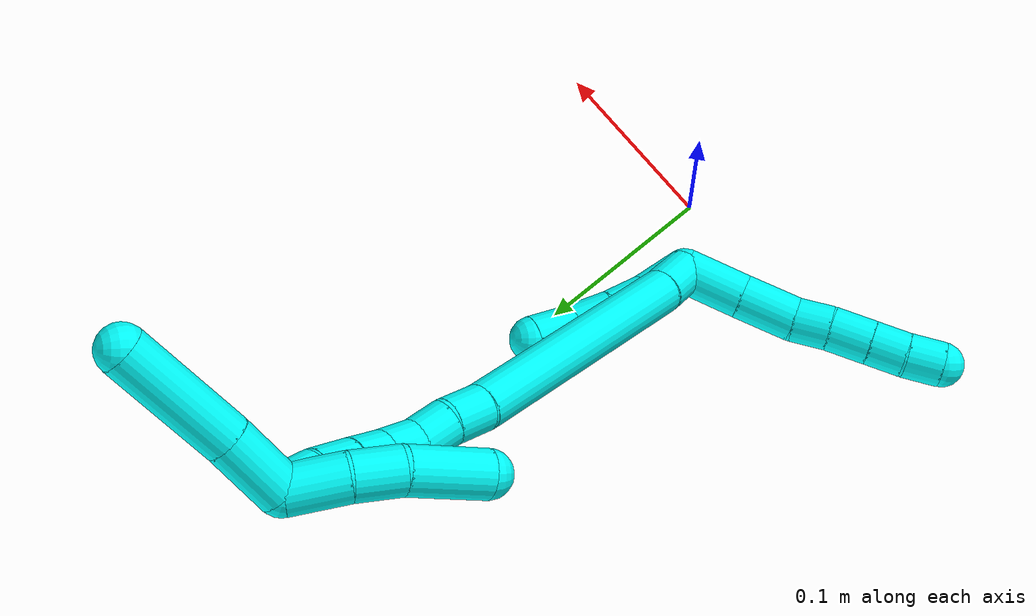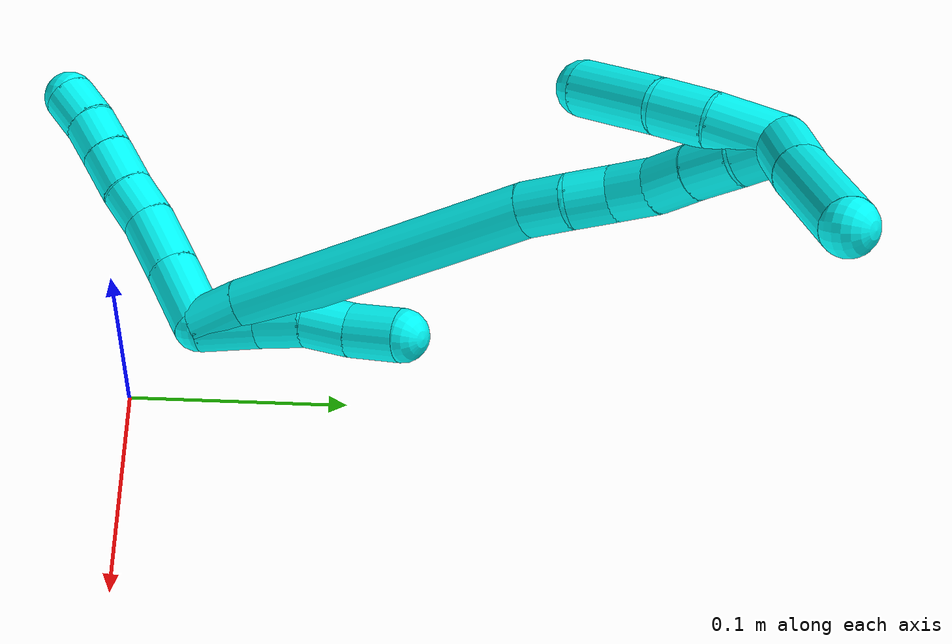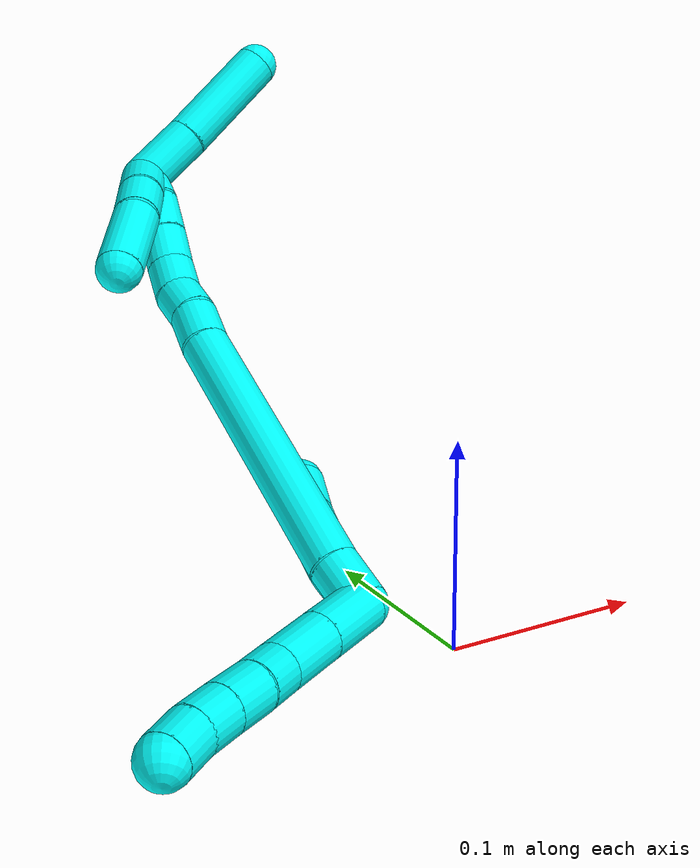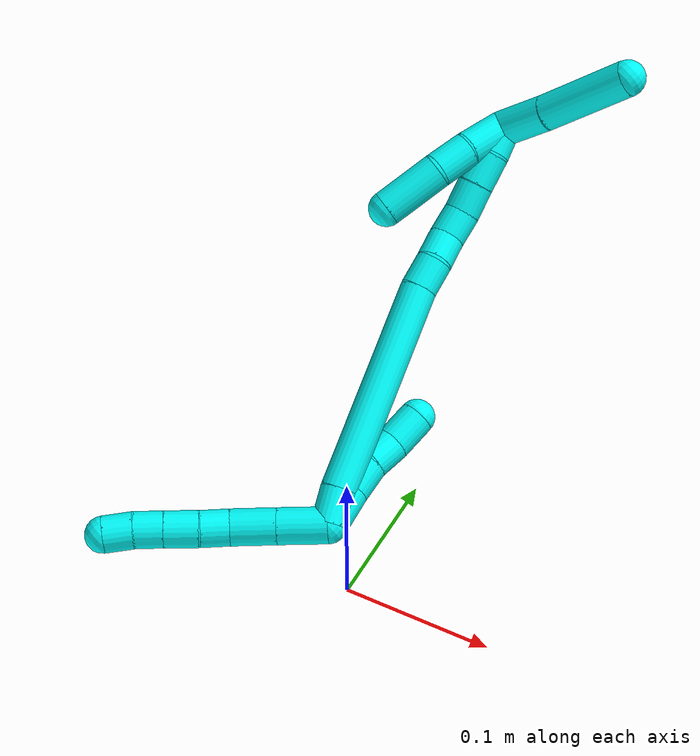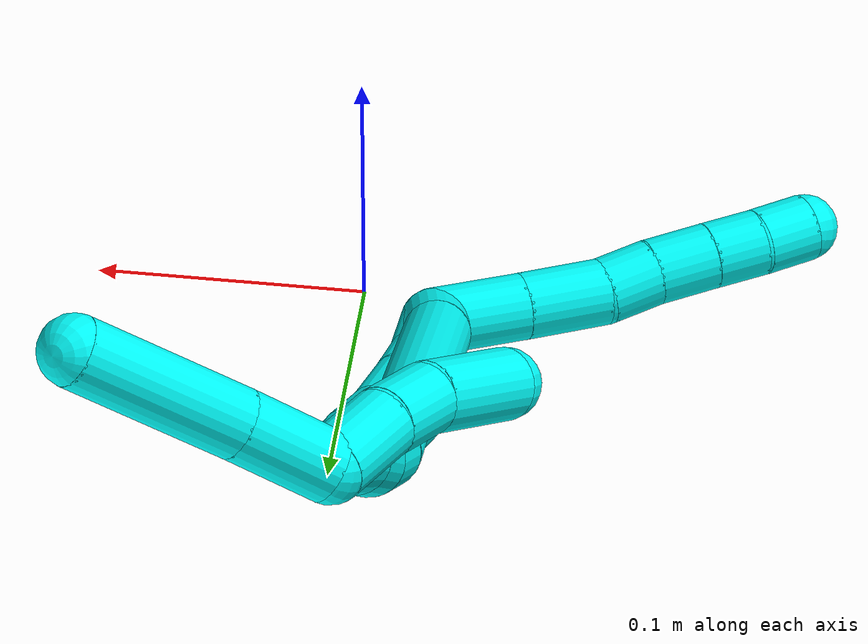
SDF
<sdf version="1.7">
 <world name="default">
  <model name="3">
   <static>0</static>
   <link name="3">
    <collision name="collision-cylinder-e_1_2_8">
     <pose>-0.00994 -0.00509 -0.012977 2.76782 -0.619461 -2.07426</pose>
     <geometry><cylinder><radius>0.0125</radius><length>0.034241</length></cylinder></geometry>
     <surface>
      <friction><ode><mu>1.16</mu><mu2>1.16</mu2><slip1>0</slip1><slip2>0</slip2></ode></friction>
      <contact><ode><kp>1e+06</kp><kd>1</kd><max_vel>0</max_vel><min_depth>0.001</min_depth></ode></contact>
     </surface>
    </collision>
    <visual name="visual-cylinder-e_1_2_8">
     <pose>-0.00994 -0.00509 -0.012977 2.76782 -0.619461 -2.07426</pose>
     <geometry><cylinder><radius>0.0125</radius><length>0.034241</length></cylinder></geometry>
     <material><ambient>0.003922 1 0.996078 1</ambient></material>
    </visual>
    <collision name="collision-cylinder-e_2_8_9">
     <pose>-0.02892 -0.015021 -0.03804 2.76055 -0.606887 -2.03746</pose>
     <geometry><cylinder><radius>0.0125</radius><length>0.031699</length></cylinder></geometry>
     <surface>
      <friction><ode><mu>1.16</mu><mu2>1.16</mu2><slip1>0</slip1><slip2>0</slip2></ode></friction>
      <contact><ode><kp>1e+06</kp><kd>1</kd><max_vel>0</max_vel><min_depth>0.001</min_depth></ode></contact>
     </surface>
    </collision>
    <visual name="visual-cylinder-e_2_8_9">
     <pose>-0.02892 -0.015021 -0.03804 2.76055 -0.606887 -2.03746</pose>
     <geometry><cylinder><radius>0.0125</radius><length>0.031699</length></cylinder></geometry>
     <material><ambient>0.003922 1 0.996078 1</ambient></material>
    </visual>
    <collision name="collision-cylinder-e_3_9_10">
     <pose>-0.042594 -0.024438 -0.05798 2.61415 -0.471569 -1.45429</pose>
     <geometry><cylinder><radius>0.0125</radius><length>0.020407</length></cylinder></geometry>
     <surface>
      <friction><ode><mu>1.16</mu><mu2>1.16</mu2><slip1>0</slip1><slip2>0</slip2></ode></friction>
      <contact><ode><kp>1e+06</kp><kd>1</kd><max_vel>0</max_vel><min_depth>0.001</min_depth></ode></contact>
     </surface>
    </collision>
    <visual name="visual-cylinder-e_3_9_10">
     <pose>-0.042594 -0.024438 -0.05798 2.61415 -0.471569 -1.45429</pose>
     <geometry><cylinder><radius>0.0125</radius><length>0.020407</length></cylinder></geometry>
     <material><ambient>0.003922 1 0.996078 1</ambient></material>
    </visual>
    <collision name="collision-cylinder-e_4_10_11">
     <pose>-0.05343 -0.033599 -0.074568 2.65813 -0.561141 -1.72614</pose>
     <geometry><cylinder><radius>0.0125</radius><length>0.023302</length></cylinder></geometry>
     <surface>
      <friction><ode><mu>1.16</mu><mu2>1.16</mu2><slip1>0</slip1><slip2>0</slip2></ode></friction>
      <contact><ode><kp>1e+06</kp><kd>1</kd><max_vel>0</max_vel><min_depth>0.001</min_depth></ode></contact>
     </surface>
    </collision>
    <visual name="visual-cylinder-e_4_10_11">
     <pose>-0.05343 -0.033599 -0.074568 2.65813 -0.561141 -1.72614</pose>
     <geometry><cylinder><radius>0.0125</radius><length>0.023302</length></cylinder></geometry>
     <material><ambient>0.003922 1 0.996078 1</ambient></material>
    </visual>
    <collision name="collision-cylinder-e_5_11_12">
     <pose>-0.064893 -0.041959 -0.090929 2.68198 -0.553871 -1.76434</pose>
     <geometry><cylinder><radius>0.0125</radius><length>0.020012</length></cylinder></geometry>
     <surface>
      <friction><ode><mu>1.16</mu><mu2>1.16</mu2><slip1>0</slip1><slip2>0</slip2></ode></friction>
      <contact><ode><kp>1e+06</kp><kd>1</kd><max_vel>0</max_vel><min_depth>0.001</min_depth></ode></contact>
     </surface>
    </collision>
    <visual name="visual-cylinder-e_5_11_12">
     <pose>-0.064893 -0.041959 -0.090929 2.68198 -0.553871 -1.76434</pose>
     <geometry><cylinder><radius>0.0125</radius><length>0.020012</length></cylinder></geometry>
     <material><ambient>0.003922 1 0.996078 1</ambient></material>
    </visual>
    <collision name="collision-cylinder-e_6_12_6">
     <pose>-0.074538 -0.049318 -0.107004 2.74041 -0.445533 -1.67864</pose>
     <geometry><cylinder><radius>0.0125</radius><length>0.020338</length></cylinder></geometry>
     <surface>
      <friction><ode><mu>1.16</mu><mu2>1.16</mu2><slip1>0</slip1><slip2>0</slip2></ode></friction>
      <contact><ode><kp>1e+06</kp><kd>1</kd><max_vel>0</max_vel><min_depth>0.001</min_depth></ode></contact>
     </surface>
    </collision>
    <visual name="visual-cylinder-e_6_12_6">
     <pose>-0.074538 -0.049318 -0.107004 2.74041 -0.445533 -1.67864</pose>
     <geometry><cylinder><radius>0.0125</radius><length>0.020338</length></cylinder></geometry>
     <material><ambient>0.003922 1 0.996078 1</ambient></material>
    </visual>
    <collision name="collision-cylinder-e_1_2_13">
     <pose>-0.006392 0.002992 0.012752 -0.230471 -0.453968 0.053455</pose>
     <geometry><cylinder><radius>0.0125</radius><length>0.029149</length></cylinder></geometry>
     <surface>
      <friction><ode><mu>1.16</mu><mu2>1.16</mu2><slip1>0</slip1><slip2>0</slip2></ode></friction>
      <contact><ode><kp>1e+06</kp><kd>1</kd><max_vel>0</max_vel><min_depth>0.001</min_depth></ode></contact>
     </surface>
    </collision>
    <visual name="visual-cylinder-e_1_2_13">
     <pose>-0.006392 0.002992 0.012752 -0.230471 -0.453968 0.053455</pose>
     <geometry><cylinder><radius>0.0125</radius><length>0.029149</length></cylinder></geometry>
     <material><ambient>0.003922 1 0.996078 1</ambient></material>
    </visual>
    <collision name="collision-cylinder-e_2_13_14">
     <pose>-0.016734 0.007509 0.03632 -0.140066 -0.347076 0.024593</pose>
     <geometry><cylinder><radius>0.0125</radius><length>0.02323</length></cylinder></geometry>
     <surface>
      <friction><ode><mu>1.16</mu><mu2>1.16</mu2><slip1>0</slip1><slip2>0</slip2></ode></friction>
      <contact><ode><kp>1e+06</kp><kd>1</kd><max_vel>0</max_vel><min_depth>0.001</min_depth></ode></contact>
     </surface>
    </collision>
    <visual name="visual-cylinder-e_2_13_14">
     <pose>-0.016734 0.007509 0.03632 -0.140066 -0.347076 0.024593</pose>
     <geometry><cylinder><radius>0.0125</radius><length>0.02323</length></cylinder></geometry>
     <material><ambient>0.003922 1 0.996078 1</ambient></material>
    </visual>
    <collision name="collision-cylinder-e_3_14_15">
     <pose>-0.023004 0.012852 0.057256 -0.360751 -0.211239 0.03866</pose>
     <geometry><cylinder><radius>0.0125</radius><length>0.022127</length></cylinder></geometry>
     <surface>
      <friction><ode><mu>1.16</mu><mu2>1.16</mu2><slip1>0</slip1><slip2>0</slip2></ode></friction>
      <contact><ode><kp>1e+06</kp><kd>1</kd><max_vel>0</max_vel><min_depth>0.001</min_depth></ode></contact>
     </surface>
    </collision>
    <visual name="visual-cylinder-e_3_14_15">
     <pose>-0.023004 0.012852 0.057256 -0.360751 -0.211239 0.03866</pose>
     <geometry><cylinder><radius>0.0125</radius><length>0.022127</length></cylinder></geometry>
     <material><ambient>0.003922 1 0.996078 1</ambient></material>
    </visual>
    <collision name="collision-cylinder-e_4_15_5">
     <pose>-0.027803 0.018359 0.079767 -0.13544 -0.195716 0.013317</pose>
     <geometry><cylinder><radius>0.0125</radius><length>0.025494</length></cylinder></geometry>
     <surface>
      <friction><ode><mu>1.16</mu><mu2>1.16</mu2><slip1>0</slip1><slip2>0</slip2></ode></friction>
      <contact><ode><kp>1e+06</kp><kd>1</kd><max_vel>0</max_vel><min_depth>0.001</min_depth></ode></contact>
     </surface>
    </collision>
    <visual name="visual-cylinder-e_4_15_5">
     <pose>-0.027803 0.018359 0.079767 -0.13544 -0.195716 0.013317</pose>
     <geometry><cylinder><radius>0.0125</radius><length>0.025494</length></cylinder></geometry>
     <material><ambient>0.003922 1 0.996078 1</ambient></material>
    </visual>
    <collision name="collision-cylinder-e_1_2_16">
     <pose>-0.006645 -0.001783 0.010176 0.173418 -0.571559 -0.051071</pose>
     <geometry><cylinder><radius>0.0125</radius><length>0.024567</length></cylinder></geometry>
     <surface>
      <friction><ode><mu>1.16</mu><mu2>1.16</mu2><slip1>0</slip1><slip2>0</slip2></ode></friction>
      <contact><ode><kp>1e+06</kp><kd>1</kd><max_vel>0</max_vel><min_depth>0.001</min_depth></ode></contact>
     </surface>
    </collision>
    <visual name="visual-cylinder-e_1_2_16">
     <pose>-0.006645 -0.001783 0.010176 0.173418 -0.571559 -0.051071</pose>
     <geometry><cylinder><radius>0.0125</radius><length>0.024567</length></cylinder></geometry>
     <material><ambient>0.003922 1 0.996078 1</ambient></material>
    </visual>
    <collision name="collision-cylinder-e_2_16_17">
     <pose>-0.046913 -0.011983 0.085676 0.128162 -0.47201 -0.030861</pose>
     <geometry><cylinder><radius>0.0125</radius><length>0.1479</length></cylinder></geometry>
     <surface>
      <friction><ode><mu>1.16</mu><mu2>1.16</mu2><slip1>0</slip1><slip2>0</slip2></ode></friction>
      <contact><ode><kp>1e+06</kp><kd>1</kd><max_vel>0</max_vel><min_depth>0.001</min_depth></ode></contact>
     </surface>
    </collision>
    <visual name="visual-cylinder-e_2_16_17">
     <pose>-0.046913 -0.011983 0.085676 0.128162 -0.47201 -0.030861</pose>
     <geometry><cylinder><radius>0.0125</radius><length>0.1479</length></cylinder></geometry>
     <material><ambient>0.003922 1 0.996078 1</ambient></material>
    </visual>
    <collision name="collision-cylinder-e_3_17_18">
     <pose>-0.084194 -0.021164 0.161411 0.073112 -0.337042 -0.012444</pose>
     <geometry><cylinder><radius>0.0125</radius><length>0.022123</length></cylinder></geometry>
     <surface>
      <friction><ode><mu>1.16</mu><mu2>1.16</mu2><slip1>0</slip1><slip2>0</slip2></ode></friction>
      <contact><ode><kp>1e+06</kp><kd>1</kd><max_vel>0</max_vel><min_depth>0.001</min_depth></ode></contact>
     </surface>
    </collision>
    <visual name="visual-cylinder-e_3_17_18">
     <pose>-0.084194 -0.021164 0.161411 0.073112 -0.337042 -0.012444</pose>
     <geometry><cylinder><radius>0.0125</radius><length>0.022123</length></cylinder></geometry>
     <material><ambient>0.003922 1 0.996078 1</ambient></material>
    </visual>
    <collision name="collision-cylinder-e_4_18_19">
     <pose>-0.092497 -0.021163 0.180774 -0.085112 -0.477122 0.02071</pose>
     <geometry><cylinder><radius>0.0125</radius><length>0.020227</length></cylinder></geometry>
     <surface>
      <friction><ode><mu>1.16</mu><mu2>1.16</mu2><slip1>0</slip1><slip2>0</slip2></ode></friction>
      <contact><ode><kp>1e+06</kp><kd>1</kd><max_vel>0</max_vel><min_depth>0.001</min_depth></ode></contact>
     </surface>
    </collision>
    <visual name="visual-cylinder-e_4_18_19">
     <pose>-0.092497 -0.021163 0.180774 -0.085112 -0.477122 0.02071</pose>
     <geometry><cylinder><radius>0.0125</radius><length>0.020227</length></cylinder></geometry>
     <material><ambient>0.003922 1 0.996078 1</ambient></material>
    </visual>
    <collision name="collision-cylinder-e_5_19_20">
     <pose>-0.099964 -0.021596 0.199548 0.12127 -0.277895 -0.01698</pose>
     <geometry><cylinder><radius>0.0125</radius><length>0.020578</length></cylinder></geometry>
     <surface>
      <friction><ode><mu>1.16</mu><mu2>1.16</mu2><slip1>0</slip1><slip2>0</slip2></ode></friction>
      <contact><ode><kp>1e+06</kp><kd>1</kd><max_vel>0</max_vel><min_depth>0.001</min_depth></ode></contact>
     </surface>
    </collision>
    <visual name="visual-cylinder-e_5_19_20">
     <pose>-0.099964 -0.021596 0.199548 0.12127 -0.277895 -0.01698</pose>
     <geometry><cylinder><radius>0.0125</radius><length>0.020578</length></cylinder></geometry>
     <material><ambient>0.003922 1 0.996078 1</ambient></material>
    </visual>
    <collision name="collision-cylinder-e_6_20_21">
     <pose>-0.105424 -0.026052 0.219202 0.32 -0.249282 -0.040433</pose>
     <geometry><cylinder><radius>0.0125</radius><length>0.021379</length></cylinder></geometry>
     <surface>
      <friction><ode><mu>1.16</mu><mu2>1.16</mu2><slip1>0</slip1><slip2>0</slip2></ode></friction>
      <contact><ode><kp>1e+06</kp><kd>1</kd><max_vel>0</max_vel><min_depth>0.001</min_depth></ode></contact>
     </surface>
    </collision>
    <visual name="visual-cylinder-e_6_20_21">
     <pose>-0.105424 -0.026052 0.219202 0.32 -0.249282 -0.040433</pose>
     <geometry><cylinder><radius>0.0125</radius><length>0.021379</length></cylinder></geometry>
     <material><ambient>0.003922 1 0.996078 1</ambient></material>
    </visual>
    <collision name="collision-cylinder-e_7_21_22">
     <pose>-0.111025 -0.032228 0.239819 0.264261 -0.259363 -0.034662</pose>
     <geometry><cylinder><radius>0.0125</radius><length>0.023115</length></cylinder></geometry>
     <surface>
      <friction><ode><mu>1.16</mu><mu2>1.16</mu2><slip1>0</slip1><slip2>0</slip2></ode></friction>
      <contact><ode><kp>1e+06</kp><kd>1</kd><max_vel>0</max_vel><min_depth>0.001</min_depth></ode></contact>
     </surface>
    </collision>
    <visual name="visual-cylinder-e_7_21_22">
     <pose>-0.111025 -0.032228 0.239819 0.264261 -0.259363 -0.034662</pose>
     <geometry><cylinder><radius>0.0125</radius><length>0.023115</length></cylinder></geometry>
     <material><ambient>0.003922 1 0.996078 1</ambient></material>
    </visual>
    <collision name="collision-cylinder-e_8_22_1">
     <pose>-0.117883 -0.036794 0.259725 0.178685 -0.397721 -0.036102</pose>
     <geometry><cylinder><radius>0.0125</radius><length>0.020111</length></cylinder></geometry>
     <surface>
      <friction><ode><mu>1.16</mu><mu2>1.16</mu2><slip1>0</slip1><slip2>0</slip2></ode></friction>
      <contact><ode><kp>1e+06</kp><kd>1</kd><max_vel>0</max_vel><min_depth>0.001</min_depth></ode></contact>
     </surface>
    </collision>
    <visual name="visual-cylinder-e_8_22_1">
     <pose>-0.117883 -0.036794 0.259725 0.178685 -0.397721 -0.036102</pose>
     <geometry><cylinder><radius>0.0125</radius><length>0.020111</length></cylinder></geometry>
     <material><ambient>0.003922 1 0.996078 1</ambient></material>
    </visual>
    <collision name="collision-cylinder-e_1_1_23">
     <pose>-0.121039 -0.043695 0.254117 2.79898 0.04723 0.271375</pose>
     <geometry><cylinder><radius>0.0125</radius><length>0.031314</length></cylinder></geometry>
     <surface>
      <friction><ode><mu>1.16</mu><mu2>1.16</mu2><slip1>0</slip1><slip2>0</slip2></ode></friction>
      <contact><ode><kp>1e+06</kp><kd>1</kd><max_vel>0</max_vel><min_depth>0.001</min_depth></ode></contact>
     </surface>
    </collision>
    <visual name="visual-cylinder-e_1_1_23">
     <pose>-0.121039 -0.043695 0.254117 2.79898 0.04723 0.271375</pose>
     <geometry><cylinder><radius>0.0125</radius><length>0.031314</length></cylinder></geometry>
     <material><ambient>0.003922 1 0.996078 1</ambient></material>
    </visual>
    <collision name="collision-cylinder-e_2_23_24">
     <pose>-0.120212 -0.051387 0.226865 2.94937 0.006845 0.070968</pose>
     <geometry><cylinder><radius>0.0125</radius><length>0.025515</length></cylinder></geometry>
     <surface>
      <friction><ode><mu>1.16</mu><mu2>1.16</mu2><slip1>0</slip1><slip2>0</slip2></ode></friction>
      <contact><ode><kp>1e+06</kp><kd>1</kd><max_vel>0</max_vel><min_depth>0.001</min_depth></ode></contact>
     </surface>
    </collision>
    <visual name="visual-cylinder-e_2_23_24">
     <pose>-0.120212 -0.051387 0.226865 2.94937 0.006845 0.070968</pose>
     <geometry><cylinder><radius>0.0125</radius><length>0.025515</length></cylinder></geometry>
     <material><ambient>0.003922 1 0.996078 1</ambient></material>
    </visual>
    <collision name="collision-cylinder-e_3_24_4">
     <pose>-0.12243 -0.053869 0.19288 3.1395 -0.106964 -3.10248</pose>
     <geometry><cylinder><radius>0.0125</radius><length>0.043172</length></cylinder></geometry>
     <surface>
      <friction><ode><mu>1.16</mu><mu2>1.16</mu2><slip1>0</slip1><slip2>0</slip2></ode></friction>
      <contact><ode><kp>1e+06</kp><kd>1</kd><max_vel>0</max_vel><min_depth>0.001</min_depth></ode></contact>
     </surface>
    </collision>
    <visual name="visual-cylinder-e_3_24_4">
     <pose>-0.12243 -0.053869 0.19288 3.1395 -0.106964 -3.10248</pose>
     <geometry><cylinder><radius>0.0125</radius><length>0.043172</length></cylinder></geometry>
     <material><ambient>0.003922 1 0.996078 1</ambient></material>
    </visual>
    <collision name="collision-cylinder-e_1_1_25">
     <pose>-0.11037 -0.043621 0.281852 0.379035 0.683783 0.136313</pose>
     <geometry><cylinder><radius>0.0125</radius><length>0.036117</length></cylinder></geometry>
     <surface>
      <friction><ode><mu>1.16</mu><mu2>1.16</mu2><slip1>0</slip1><slip2>0</slip2></ode></friction>
      <contact><ode><kp>1e+06</kp><kd>1</kd><max_vel>0</max_vel><min_depth>0.001</min_depth></ode></contact>
     </surface>
    </collision>
    <visual name="visual-cylinder-e_1_1_25">
     <pose>-0.11037 -0.043621 0.281852 0.379035 0.683783 0.136313</pose>
     <geometry><cylinder><radius>0.0125</radius><length>0.036117</length></cylinder></geometry>
     <material><ambient>0.003922 1 0.996078 1</ambient></material>
    </visual>
    <collision name="collision-cylinder-e_2_25_3">
     <pose>-0.080212 -0.057734 0.319125 0.352707 0.627351 0.115485</pose>
     <geometry><cylinder><radius>0.0125</radius><length>0.063883</length></cylinder></geometry>
     <surface>
      <friction><ode><mu>1.16</mu><mu2>1.16</mu2><slip1>0</slip1><slip2>0</slip2></ode></friction>
      <contact><ode><kp>1e+06</kp><kd>1</kd><max_vel>0</max_vel><min_depth>0.001</min_depth></ode></contact>
     </surface>
    </collision>
    <visual name="visual-cylinder-e_2_25_3">
     <pose>-0.080212 -0.057734 0.319125 0.352707 0.627351 0.115485</pose>
     <geometry><cylinder><radius>0.0125</radius><length>0.063883</length></cylinder></geometry>
     <material><ambient>0.003922 1 0.996078 1</ambient></material>
    </visual>
    <collision name="collision-sphere-3">
     <pose>-0.061462 -0.066667 0.343393 0 -0 0</pose>
     <geometry><sphere><radius>0.0125</radius></sphere></geometry>
     <surface>
      <friction><ode><mu>1.16</mu><mu2>1.16</mu2><slip1>0</slip1><slip2>0</slip2></ode></friction>
      <contact><ode><kp>1e+06</kp><kd>1</kd><max_vel>0</max_vel><min_depth>0.001</min_depth></ode></contact>
     </surface>
    </collision>
    <visual name="visual-sphere-3">
     <pose>-0.061462 -0.066667 0.343393 0 -0 0</pose>
     <geometry><sphere><radius>0.0125</radius></sphere></geometry>
     <material><ambient>0.003922 1 0.996078 1</ambient></material>
    </visual>
    <collision name="collision-sphere-25">
     <pose>-0.098962 -0.048801 0.294857 0 -0 0</pose>
     <geometry><sphere><radius>0.0125</radius></sphere></geometry>
     <surface>
      <friction><ode><mu>1.16</mu><mu2>1.16</mu2><slip1>0</slip1><slip2>0</slip2></ode></friction>
      <contact><ode><kp>1e+06</kp><kd>1</kd><max_vel>0</max_vel><min_depth>0.001</min_depth></ode></contact>
     </surface>
    </collision>
    <visual name="visual-sphere-25">
     <pose>-0.098962 -0.048801 0.294857 0 -0 0</pose>
     <geometry><sphere><radius>0.0125</radius></sphere></geometry>
     <material><ambient>0.003922 1 0.996078 1</ambient></material>
    </visual>
    <collision name="collision-sphere-4">
     <pose>-0.124734 -0.053914 0.171418 0 -0 0</pose>
     <geometry><sphere><radius>0.0125</radius></sphere></geometry>
     <surface>
      <friction><ode><mu>1.16</mu><mu2>1.16</mu2><slip1>0</slip1><slip2>0</slip2></ode></friction>
      <contact><ode><kp>1e+06</kp><kd>1</kd><max_vel>0</max_vel><min_depth>0.001</min_depth></ode></contact>
     </surface>
    </collision>
    <visual name="visual-sphere-4">
     <pose>-0.124734 -0.053914 0.171418 0 -0 0</pose>
     <geometry><sphere><radius>0.0125</radius></sphere></geometry>
     <material><ambient>0.003922 1 0.996078 1</ambient></material>
    </visual>
    <collision name="collision-sphere-24">
     <pose>-0.120125 -0.053824 0.214343 0 -0 0</pose>
     <geometry><sphere><radius>0.0125</radius></sphere></geometry>
     <surface>
      <friction><ode><mu>1.16</mu><mu2>1.16</mu2><slip1>0</slip1><slip2>0</slip2></ode></friction>
      <contact><ode><kp>1e+06</kp><kd>1</kd><max_vel>0</max_vel><min_depth>0.001</min_depth></ode></contact>
     </surface>
    </collision>
    <visual name="visual-sphere-24">
     <pose>-0.120125 -0.053824 0.214343 0 -0 0</pose>
     <geometry><sphere><radius>0.0125</radius></sphere></geometry>
     <material><ambient>0.003922 1 0.996078 1</ambient></material>
    </visual>
    <collision name="collision-sphere-23">
     <pose>-0.1203 -0.048949 0.239387 0 -0 0</pose>
     <geometry><sphere><radius>0.0125</radius></sphere></geometry>
     <surface>
      <friction><ode><mu>1.16</mu><mu2>1.16</mu2><slip1>0</slip1><slip2>0</slip2></ode></friction>
      <contact><ode><kp>1e+06</kp><kd>1</kd><max_vel>0</max_vel><min_depth>0.001</min_depth></ode></contact>
     </surface>
    </collision>
    <visual name="visual-sphere-23">
     <pose>-0.1203 -0.048949 0.239387 0 -0 0</pose>
     <geometry><sphere><radius>0.0125</radius></sphere></geometry>
     <material><ambient>0.003922 1 0.996078 1</ambient></material>
    </visual>
    <collision name="collision-sphere-1">
     <pose>-0.121778 -0.038441 0.268848 0 -0 0</pose>
     <geometry><sphere><radius>0.0125</radius></sphere></geometry>
     <surface>
      <friction><ode><mu>1.16</mu><mu2>1.16</mu2><slip1>0</slip1><slip2>0</slip2></ode></friction>
      <contact><ode><kp>1e+06</kp><kd>1</kd><max_vel>0</max_vel><min_depth>0.001</min_depth></ode></contact>
     </surface>
    </collision>
    <visual name="visual-sphere-1">
     <pose>-0.121778 -0.038441 0.268848 0 -0 0</pose>
     <geometry><sphere><radius>0.0125</radius></sphere></geometry>
     <material><ambient>0.003922 1 0.996078 1</ambient></material>
    </visual>
    <collision name="collision-sphere-22">
     <pose>-0.113989 -0.035146 0.250602 0 -0 0</pose>
     <geometry><sphere><radius>0.0125</radius></sphere></geometry>
     <surface>
      <friction><ode><mu>1.16</mu><mu2>1.16</mu2><slip1>0</slip1><slip2>0</slip2></ode></friction>
      <contact><ode><kp>1e+06</kp><kd>1</kd><max_vel>0</max_vel><min_depth>0.001</min_depth></ode></contact>
     </surface>
    </collision>
    <visual name="visual-sphere-22">
     <pose>-0.113989 -0.035146 0.250602 0 -0 0</pose>
     <geometry><sphere><radius>0.0125</radius></sphere></geometry>
     <material><ambient>0.003922 1 0.996078 1</ambient></material>
    </visual>
    <collision name="collision-sphere-21">
     <pose>-0.108061 -0.02931 0.229036 0 -0 0</pose>
     <geometry><sphere><radius>0.0125</radius></sphere></geometry>
     <surface>
      <friction><ode><mu>1.16</mu><mu2>1.16</mu2><slip1>0</slip1><slip2>0</slip2></ode></friction>
      <contact><ode><kp>1e+06</kp><kd>1</kd><max_vel>0</max_vel><min_depth>0.001</min_depth></ode></contact>
     </surface>
    </collision>
    <visual name="visual-sphere-21">
     <pose>-0.108061 -0.02931 0.229036 0 -0 0</pose>
     <geometry><sphere><radius>0.0125</radius></sphere></geometry>
     <material><ambient>0.003922 1 0.996078 1</ambient></material>
    </visual>
    <collision name="collision-sphere-12">
     <pose>-0.070156 -0.045734 -0.098556 0 -0 0</pose>
     <geometry><sphere><radius>0.0125</radius></sphere></geometry>
     <surface>
      <friction><ode><mu>1.16</mu><mu2>1.16</mu2><slip1>0</slip1><slip2>0</slip2></ode></friction>
      <contact><ode><kp>1e+06</kp><kd>1</kd><max_vel>0</max_vel><min_depth>0.001</min_depth></ode></contact>
     </surface>
    </collision>
    <visual name="visual-sphere-12">
     <pose>-0.070156 -0.045734 -0.098556 0 -0 0</pose>
     <geometry><sphere><radius>0.0125</radius></sphere></geometry>
     <material><ambient>0.003922 1 0.996078 1</ambient></material>
    </visual>
    <collision name="collision-sphere-11">
     <pose>-0.05963 -0.038184 -0.083302 0 -0 0</pose>
     <geometry><sphere><radius>0.0125</radius></sphere></geometry>
     <surface>
      <friction><ode><mu>1.16</mu><mu2>1.16</mu2><slip1>0</slip1><slip2>0</slip2></ode></friction>
      <contact><ode><kp>1e+06</kp><kd>1</kd><max_vel>0</max_vel><min_depth>0.001</min_depth></ode></contact>
     </surface>
    </collision>
    <visual name="visual-sphere-11">
     <pose>-0.05963 -0.038184 -0.083302 0 -0 0</pose>
     <geometry><sphere><radius>0.0125</radius></sphere></geometry>
     <material><ambient>0.003922 1 0.996078 1</ambient></material>
    </visual>
    <collision name="collision-sphere-10">
     <pose>-0.04723 -0.029013 -0.065835 0 -0 0</pose>
     <geometry><sphere><radius>0.0125</radius></sphere></geometry>
     <surface>
      <friction><ode><mu>1.16</mu><mu2>1.16</mu2><slip1>0</slip1><slip2>0</slip2></ode></friction>
      <contact><ode><kp>1e+06</kp><kd>1</kd><max_vel>0</max_vel><min_depth>0.001</min_depth></ode></contact>
     </surface>
    </collision>
    <visual name="visual-sphere-10">
     <pose>-0.04723 -0.029013 -0.065835 0 -0 0</pose>
     <geometry><sphere><radius>0.0125</radius></sphere></geometry>
     <material><ambient>0.003922 1 0.996078 1</ambient></material>
    </visual>
    <collision name="collision-sphere-9">
     <pose>-0.037959 -0.019863 -0.050125 0 -0 0</pose>
     <geometry><sphere><radius>0.0125</radius></sphere></geometry>
     <surface>
      <friction><ode><mu>1.16</mu><mu2>1.16</mu2><slip1>0</slip1><slip2>0</slip2></ode></friction>
      <contact><ode><kp>1e+06</kp><kd>1</kd><max_vel>0</max_vel><min_depth>0.001</min_depth></ode></contact>
     </surface>
    </collision>
    <visual name="visual-sphere-9">
     <pose>-0.037959 -0.019863 -0.050125 0 -0 0</pose>
     <geometry><sphere><radius>0.0125</radius></sphere></geometry>
     <material><ambient>0.003922 1 0.996078 1</ambient></material>
    </visual>
    <collision name="collision-sphere-2">
     <geometry><sphere><radius>0.0125</radius></sphere></geometry>
     <surface>
      <friction><ode><mu>1.16</mu><mu2>1.16</mu2><slip1>0</slip1><slip2>0</slip2></ode></friction>
      <contact><ode><kp>1e+06</kp><kd>1</kd><max_vel>0</max_vel><min_depth>0.001</min_depth></ode></contact>
     </surface>
    </collision>
    <visual name="visual-sphere-2">
     <geometry><sphere><radius>0.0125</radius></sphere></geometry>
     <material><ambient>0.003922 1 0.996078 1</ambient></material>
    </visual>
    <collision name="collision-sphere-19">
     <pose>-0.097141 -0.020399 0.189726 0 -0 0</pose>
     <geometry><sphere><radius>0.0125</radius></sphere></geometry>
     <surface>
      <friction><ode><mu>1.16</mu><mu2>1.16</mu2><slip1>0</slip1><slip2>0</slip2></ode></friction>
      <contact><ode><kp>1e+06</kp><kd>1</kd><max_vel>0</max_vel><min_depth>0.001</min_depth></ode></contact>
     </surface>
    </collision>
    <visual name="visual-sphere-19">
     <pose>-0.097141 -0.020399 0.189726 0 -0 0</pose>
     <geometry><sphere><radius>0.0125</radius></sphere></geometry>
     <material><ambient>0.003922 1 0.996078 1</ambient></material>
    </visual>
    <collision name="collision-sphere-8">
     <pose>-0.01988 -0.010179 -0.025954 0 -0 0</pose>
     <geometry><sphere><radius>0.0125</radius></sphere></geometry>
     <surface>
      <friction><ode><mu>1.16</mu><mu2>1.16</mu2><slip1>0</slip1><slip2>0</slip2></ode></friction>
      <contact><ode><kp>1e+06</kp><kd>1</kd><max_vel>0</max_vel><min_depth>0.001</min_depth></ode></contact>
     </surface>
    </collision>
    <visual name="visual-sphere-8">
     <pose>-0.01988 -0.010179 -0.025954 0 -0 0</pose>
     <geometry><sphere><radius>0.0125</radius></sphere></geometry>
     <material><ambient>0.003922 1 0.996078 1</ambient></material>
    </visual>
    <collision name="collision-sphere-6">
     <pose>-0.07892 -0.052901 -0.115451 0 -0 0</pose>
     <geometry><sphere><radius>0.0125</radius></sphere></geometry>
     <surface>
      <friction><ode><mu>1.16</mu><mu2>1.16</mu2><slip1>0</slip1><slip2>0</slip2></ode></friction>
      <contact><ode><kp>1e+06</kp><kd>1</kd><max_vel>0</max_vel><min_depth>0.001</min_depth></ode></contact>
     </surface>
    </collision>
    <visual name="visual-sphere-6">
     <pose>-0.07892 -0.052901 -0.115451 0 -0 0</pose>
     <geometry><sphere><radius>0.0125</radius></sphere></geometry>
     <material><ambient>0.003922 1 0.996078 1</ambient></material>
    </visual>
    <collision name="collision-sphere-13">
     <pose>-0.012783 0.005984 0.025504 0 -0 0</pose>
     <geometry><sphere><radius>0.0125</radius></sphere></geometry>
     <surface>
      <friction><ode><mu>1.16</mu><mu2>1.16</mu2><slip1>0</slip1><slip2>0</slip2></ode></friction>
      <contact><ode><kp>1e+06</kp><kd>1</kd><max_vel>0</max_vel><min_depth>0.001</min_depth></ode></contact>
     </surface>
    </collision>
    <visual name="visual-sphere-13">
     <pose>-0.012783 0.005984 0.025504 0 -0 0</pose>
     <geometry><sphere><radius>0.0125</radius></sphere></geometry>
     <material><ambient>0.003922 1 0.996078 1</ambient></material>
    </visual>
    <collision name="collision-sphere-14">
     <pose>-0.020685 0.009034 0.047135 0 -0 0</pose>
     <geometry><sphere><radius>0.0125</radius></sphere></geometry>
     <surface>
      <friction><ode><mu>1.16</mu><mu2>1.16</mu2><slip1>0</slip1><slip2>0</slip2></ode></friction>
      <contact><ode><kp>1e+06</kp><kd>1</kd><max_vel>0</max_vel><min_depth>0.001</min_depth></ode></contact>
     </surface>
    </collision>
    <visual name="visual-sphere-14">
     <pose>-0.020685 0.009034 0.047135 0 -0 0</pose>
     <geometry><sphere><radius>0.0125</radius></sphere></geometry>
     <material><ambient>0.003922 1 0.996078 1</ambient></material>
    </visual>
    <collision name="collision-sphere-15">
     <pose>-0.025324 0.016671 0.067377 0 -0 0</pose>
     <geometry><sphere><radius>0.0125</radius></sphere></geometry>
     <surface>
      <friction><ode><mu>1.16</mu><mu2>1.16</mu2><slip1>0</slip1><slip2>0</slip2></ode></friction>
      <contact><ode><kp>1e+06</kp><kd>1</kd><max_vel>0</max_vel><min_depth>0.001</min_depth></ode></contact>
     </surface>
    </collision>
    <visual name="visual-sphere-15">
     <pose>-0.025324 0.016671 0.067377 0 -0 0</pose>
     <geometry><sphere><radius>0.0125</radius></sphere></geometry>
     <material><ambient>0.003922 1 0.996078 1</ambient></material>
    </visual>
    <collision name="collision-sphere-5">
     <pose>-0.030282 0.020047 0.092156 0 -0 0</pose>
     <geometry><sphere><radius>0.0125</radius></sphere></geometry>
     <surface>
      <friction><ode><mu>1.16</mu><mu2>1.16</mu2><slip1>0</slip1><slip2>0</slip2></ode></friction>
      <contact><ode><kp>1e+06</kp><kd>1</kd><max_vel>0</max_vel><min_depth>0.001</min_depth></ode></contact>
     </surface>
    </collision>
    <visual name="visual-sphere-5">
     <pose>-0.030282 0.020047 0.092156 0 -0 0</pose>
     <geometry><sphere><radius>0.0125</radius></sphere></geometry>
     <material><ambient>0.003922 1 0.996078 1</ambient></material>
    </visual>
    <collision name="collision-sphere-16">
     <pose>-0.013289 -0.003565 0.020352 0 -0 0</pose>
     <geometry><sphere><radius>0.0125</radius></sphere></geometry>
     <surface>
      <friction><ode><mu>1.16</mu><mu2>1.16</mu2><slip1>0</slip1><slip2>0</slip2></ode></friction>
      <contact><ode><kp>1e+06</kp><kd>1</kd><max_vel>0</max_vel><min_depth>0.001</min_depth></ode></contact>
     </surface>
    </collision>
    <visual name="visual-sphere-16">
     <pose>-0.013289 -0.003565 0.020352 0 -0 0</pose>
     <geometry><sphere><radius>0.0125</radius></sphere></geometry>
     <material><ambient>0.003922 1 0.996078 1</ambient></material>
    </visual>
    <collision name="collision-sphere-17">
     <pose>-0.080536 -0.020402 0.151 0 -0 0</pose>
     <geometry><sphere><radius>0.0125</radius></sphere></geometry>
     <surface>
      <friction><ode><mu>1.16</mu><mu2>1.16</mu2><slip1>0</slip1><slip2>0</slip2></ode></friction>
      <contact><ode><kp>1e+06</kp><kd>1</kd><max_vel>0</max_vel><min_depth>0.001</min_depth></ode></contact>
     </surface>
    </collision>
    <visual name="visual-sphere-17">
     <pose>-0.080536 -0.020402 0.151 0 -0 0</pose>
     <geometry><sphere><radius>0.0125</radius></sphere></geometry>
     <material><ambient>0.003922 1 0.996078 1</ambient></material>
    </visual>
    <collision name="collision-sphere-18">
     <pose>-0.087852 -0.021927 0.171823 0 -0 0</pose>
     <geometry><sphere><radius>0.0125</radius></sphere></geometry>
     <surface>
      <friction><ode><mu>1.16</mu><mu2>1.16</mu2><slip1>0</slip1><slip2>0</slip2></ode></friction>
      <contact><ode><kp>1e+06</kp><kd>1</kd><max_vel>0</max_vel><min_depth>0.001</min_depth></ode></contact>
     </surface>
    </collision>
    <visual name="visual-sphere-18">
     <pose>-0.087852 -0.021927 0.171823 0 -0 0</pose>
     <geometry><sphere><radius>0.0125</radius></sphere></geometry>
     <material><ambient>0.003922 1 0.996078 1</ambient></material>
    </visual>
    <collision name="collision-sphere-20">
     <pose>-0.102786 -0.022793 0.209369 0 -0 0</pose>
     <geometry><sphere><radius>0.0125</radius></sphere></geometry>
     <surface>
      <friction><ode><mu>1.16</mu><mu2>1.16</mu2><slip1>0</slip1><slip2>0</slip2></ode></friction>
      <contact><ode><kp>1e+06</kp><kd>1</kd><max_vel>0</max_vel><min_depth>0.001</min_depth></ode></contact>
     </surface>
    </collision>
    <visual name="visual-sphere-20">
     <pose>-0.102786 -0.022793 0.209369 0 -0 0</pose>
     <geometry><sphere><radius>0.0125</radius></sphere></geometry>
     <material><ambient>0.003922 1 0.996078 1</ambient></material>
    </visual>
    <inertial>
     <pose>-0.065754 -0.024304 0.117728 0 -0 0</pose>
     <mass>0.75</mass>
     <inertia>
      <ixx>0.000253</ixx>
      <ixy>0</ixy>
      <ixz>0</ixz>
      <iyy>0.000308</iyy>
      <iyz>0</iyz>
      <izz>0.000187</izz>
     </inertia>
    </inertial>
   </link>
   <pose>-0.030287 0.030924 0.016503 -1.09571 0.023273 -0.499395</pose>
  </model>
 </world>
</sdf>
